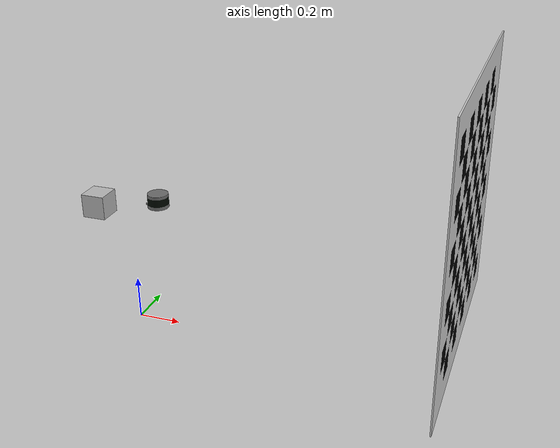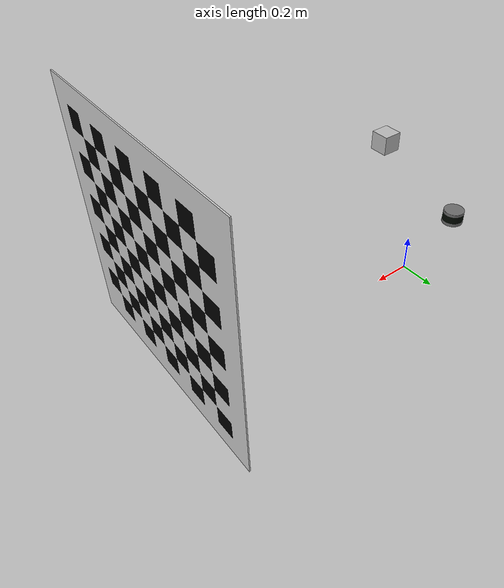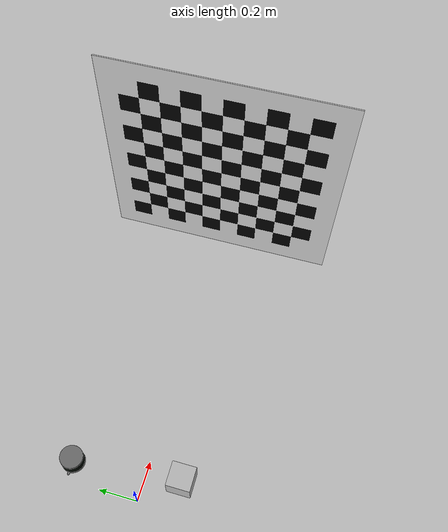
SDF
<sdf version='1.6'>
  <world name='default'>
    <scene>
      <shadows>false</shadows>
    </scene>

    <light type="directional" name="x_light">
      <direction>1 0 0</direction>
    </light>
    <light type="directional" name="y_light">
      <direction>0 1 0</direction>
    </light>
    <light type="directional" name="-y_light">
      <direction>0 -1 0</direction>
    </light>
    <light type="directional" name="z_light">
      <direction>0 0 1</direction>
    </light>
    <light type="directional" name="-z_light">
      <direction>0 0 -1</direction>
    </light>

    <include>
      <uri>model://lidar</uri>
      <pose>0 0.25 0.5 0 0 0</pose>
    </include>

    <include>
      <uri>model://camera</uri>
      <pose>0 -0.25 0.7 0 0 0</pose>
    </include>

    <include>
      <uri>model://calibration_target</uri>
      <pose>1.5 0 0.75 0 0 1.5708</pose>
    </include>

  </world>
</sdf>

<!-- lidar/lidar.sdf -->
<sdf version="1.6">
    <model name="lidar">
        <pose>0 0 0.5</pose>
        <static>true</static>
        <link name="link">
            <visual name="visual">
                <geometry>
                    <mesh>
                        <uri>model://lidar/meshes/lidar.dae</uri>
                    </mesh>
                </geometry>
            </visual>

            <sensor type="ray" name="gpu-vlp-16">
                <visualize>false</visualize>
                <update_rate>10</update_rate>
                <ray>
                    <scan>
                        <horizontal>
                            <samples>1024</samples>
                            <resolution>1</resolution>
                            <min_angle>0</min_angle>
                            <max_angle>6.2832</max_angle>
                        </horizontal>
                        <vertical>
                            <samples>16</samples>
                            <min_angle>-0.2618</min_angle>
                            <max_angle>0.2618</max_angle>
                        </vertical>
                    </scan>
                    <range>
                        <min>0.1</min>
                        <max>100</max>
                        <resolution>0.03</resolution>
                    </range>
                    <noise>
                        <type>gaussian</type>
                        <mean>0.0</mean>
                        <stddev>0.0</stddev>
                    </noise>
                </ray>

                <plugin name="gazebo_ros_laser_controller" filename="libgazebo_ros_velodyne_laser.so">
                    <topicName>lidar_points</topicName>
                    <frameName>lidar_link</frameName>
                    <min_range>0.1</min_range>
                    <max_range>100</max_range>
                    <gaussianNoise>0</gaussianNoise>
                </plugin>
            </sensor>
        </link>
    </model>
</sdf>

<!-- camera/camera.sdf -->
<sdf version="1.6">
	<model name="camera">
	<pose>0 0 0.5</pose>
	<static>true</static>
		<link name="link">
			<visual name="visual">
				<geometry>
					<box>
						<size>0.1 0.1 0.1</size>
					</box>
				</geometry>
			</visual>

			<sensor name="camera" type="camera">
				<camera>
					<horizontal_fov>1.047</horizontal_fov>
					<image>
						<width>640</width>
						<height>480</height>
					</image>
					<clip>
						<near>0.1</near>
						<far>100</far>
					</clip>
				</camera>
				<always_on>1</always_on>
				<update_rate>30</update_rate>
				<visualize>true</visualize>

				<plugin name="camera_controller" filename="libgazebo_ros_camera.so">
					<alwaysOn>true</alwaysOn>
					<updateRate>0.0</updateRate>
					<cameraName>camera</cameraName>
					<imageTopicName>image_raw</imageTopicName>
					<cameraInfoTopicName>camera_info</cameraInfoTopicName>
					<frameName>camera_link</frameName>
				</plugin>

			</sensor>
		</link>
	</model>
</sdf>

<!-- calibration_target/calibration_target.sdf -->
<sdf version="1.6">
    <model name="calibration_target">
        <pose>0 0 0.75</pose>
        <static>true</static>
        <link name="link">
            <visual name="visual">
                <geometry>
                    <mesh>
                        <uri>model://calibration_target/meshes/calibration_target.dae</uri>
                    </mesh>
                </geometry>
            </visual>
            <collision name="collision">
                <geometry>
                    <mesh>
                        <uri>model://calibration_target/meshes/calibration_target.dae</uri>
                    </mesh>
                </geometry>
            </collision>
        </link>
    </model>
</sdf>
